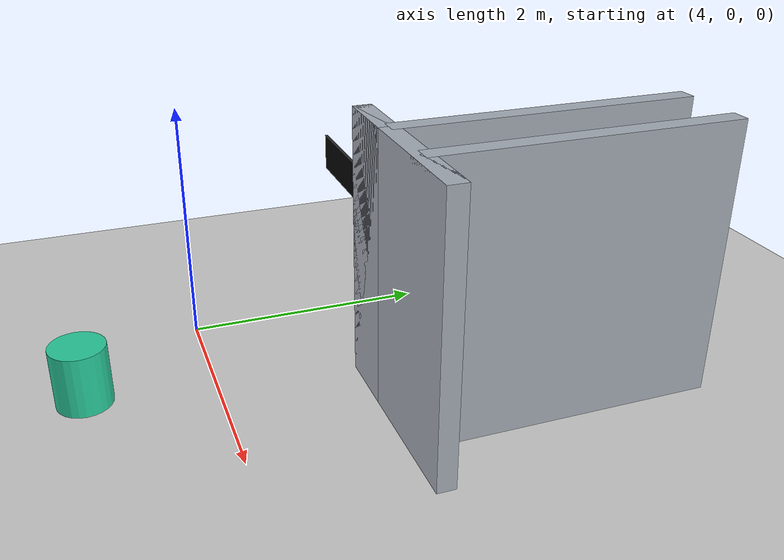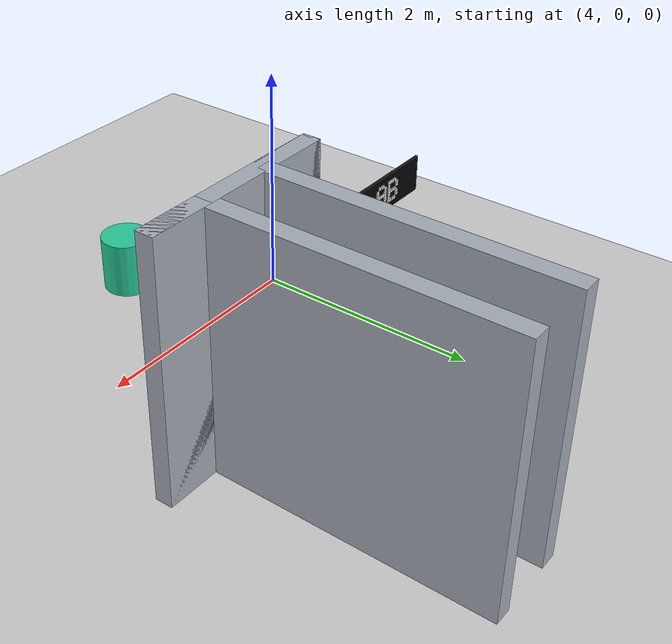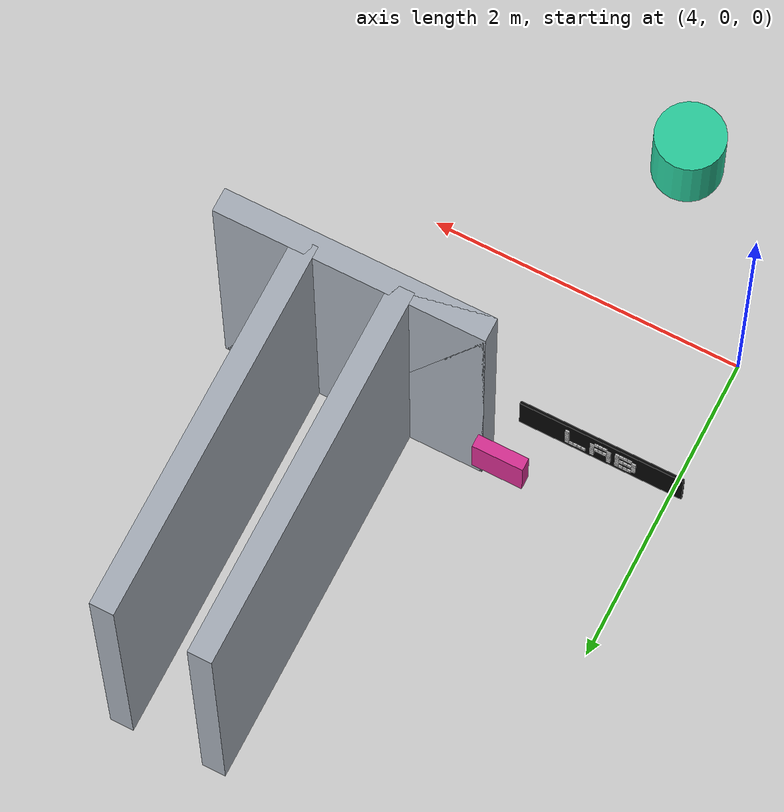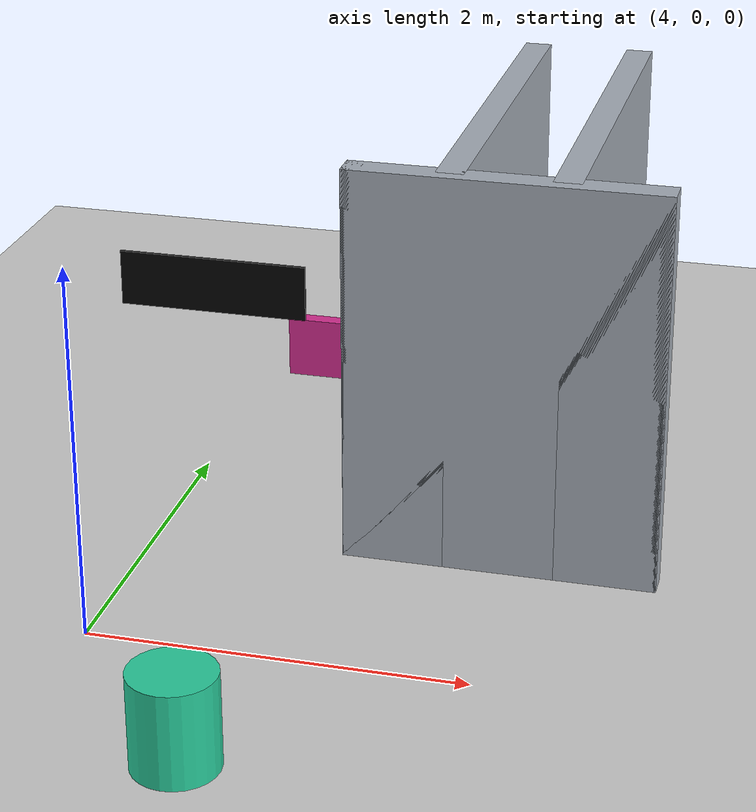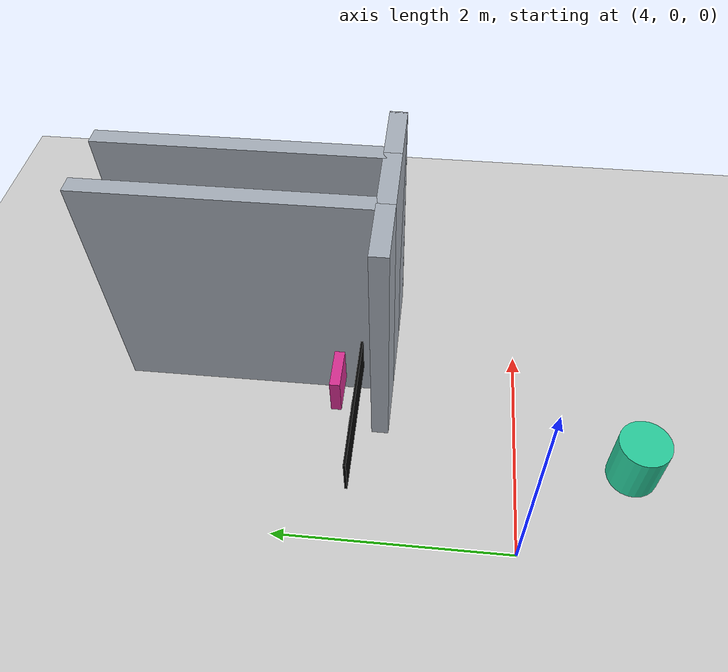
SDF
<sdf version="1.9">
 <world name="default">
  <model name="ground_plane">
   <static>true</static>
   <pose>4.75 0 -0.05 0 0 0</pose>
   <link name="body">
    <collision name="collision"><geometry><box><size>13.5 12 0.1</size></box></geometry></collision>
    <visual name="visual">
     <geometry><box><size>13.5 12 0.1</size></box></geometry>
     <material><ambient>0.8 0.8 0.8 1</ambient><diffuse>0.8 0.8 0.8 1</diffuse></material>
    </visual>
   </link>
  </model>
  <model name="room_1_1_1">
   <static>true</static>
   <pose>5.6 2.4 1.1 0 0 0</pose>
   <link name="body">
    <collision name="collision"><geometry><box><size>0.15 2.4 2.2</size></box></geometry></collision>
    <visual name="visual">
     <geometry><box><size>0.15 2.4 2.2</size></box></geometry>
     <material><ambient>0.65 0.68 0.72 1</ambient><diffuse>0.65 0.68 0.72 1</diffuse></material>
    </visual>
   </link>
  </model>
  <model name="jamb_1_1_1">
   <static>true</static>
   <pose>5.324999999999999 1.2 1.1 0 0 0</pose>
   <link name="body">
    <collision name="collision"><geometry><box><size>0.55 0.15 2.2</size></box></geometry></collision>
    <visual name="visual">
     <geometry><box><size>0.55 0.15 2.2</size></box></geometry>
     <material><ambient>0.65 0.68 0.72 1</ambient><diffuse>0.65 0.68 0.72 1</diffuse></material>
    </visual>
   </link>
  </model>
  <model name="hall_1_2">
   <static>true</static>
   <pose>5.9 1.2 1.1 0 0 0</pose>
   <link name="body">
    <collision name="collision">
     <geometry><box><size>1.7000000000000002 0.15 2.2</size></box></geometry>
    </collision>
    <visual name="visual">
     <geometry><box><size>1.7000000000000002 0.15 2.2</size></box></geometry>
     <material><ambient>0.65 0.68 0.72 1</ambient><diffuse>0.65 0.68 0.72 1</diffuse></material>
    </visual>
   </link>
  </model>
  <model name="room_1_2_-1">
   <static>true</static>
   <pose>6.2 2.4 1.1 0 0 0</pose>
   <link name="body">
    <collision name="collision"><geometry><box><size>0.15 2.4 2.2</size></box></geometry></collision>
    <visual name="visual">
     <geometry><box><size>0.15 2.4 2.2</size></box></geometry>
     <material><ambient>0.65 0.68 0.72 1</ambient><diffuse>0.65 0.68 0.72 1</diffuse></material>
    </visual>
   </link>
  </model>
  <model name="jamb_1_2_-1">
   <static>true</static>
   <pose>6.475 1.2 1.1 0 0 0</pose>
   <link name="body">
    <collision name="collision"><geometry><box><size>0.55 0.15 2.2</size></box></geometry></collision>
    <visual name="visual">
     <geometry><box><size>0.55 0.15 2.2</size></box></geometry>
     <material><ambient>0.65 0.68 0.72 1</ambient><diffuse>0.65 0.68 0.72 1</diffuse></material>
    </visual>
   </link>
  </model>
  <model name="r3geo_base_r010_left_1_entrance_sign">
   <static>true</static>
   <pose>4.83 1.5 1.05 0 0 0</pose>
   <link name="body">
    <visual name="visual">
     <geometry><box><size>0.32 0.08 0.32</size></box></geometry>
     <material><ambient>0.84 0.18 0.57 1</ambient><diffuse>0.84 0.18 0.57 1</diffuse></material>
    </visual>
   </link>
  </model>
  <model name="readable_r3geo_base_r010_left_1_entrance_room">
   <static>true</static>
   <pose>4.3 1.3 1.43 0 0 3.14159265359</pose>
   <link name="lettering">
    <visual name="backboard">
     <geometry><box><size>1.02 0.018 0.3</size></box></geometry>
     <material>
      <ambient>.015 .015 .015 1</ambient>
      <diffuse>.015 .015 .015 1</diffuse>
      <emissive>.015 .015 .015 1</emissive>
     </material>
     <cast_shadows>false</cast_shadows>
    </visual>
    <visual name="letter_0_0_0">
     <pose>-0.208 -0.014 0.078 0 0 0</pose>
     <geometry><box><size>0.024439999999999996 0.008 0.024439999999999996</size></box></geometry>
     <material>
      <ambient>.96 .96 .96 1</ambient>
      <diffuse>.96 .96 .96 1</diffuse>
      <emissive>.96 .96 .96 1</emissive>
     </material>
     <cast_shadows>false</cast_shadows>
    </visual>
    <visual name="letter_0_1_0">
     <pose>-0.208 -0.014 0.052 0 0 0</pose>
     <geometry><box><size>0.024439999999999996 0.008 0.024439999999999996</size></box></geometry>
     <material>
      <ambient>.96 .96 .96 1</ambient>
      <diffuse>.96 .96 .96 1</diffuse>
      <emissive>.96 .96 .96 1</emissive>
     </material>
     <cast_shadows>false</cast_shadows>
    </visual>
    <visual name="letter_0_2_0">
     <pose>-0.208 -0.014 0.026 0 0 0</pose>
     <geometry><box><size>0.024439999999999996 0.008 0.024439999999999996</size></box></geometry>
     <material>
      <ambient>.96 .96 .96 1</ambient>
      <diffuse>.96 .96 .96 1</diffuse>
      <emissive>.96 .96 .96 1</emissive>
     </material>
     <cast_shadows>false</cast_shadows>
    </visual>
    <visual name="letter_0_3_0">
     <pose>-0.208 -0.014 0 0 0 0</pose>
     <geometry><box><size>0.024439999999999996 0.008 0.024439999999999996</size></box></geometry>
     <material>
      <ambient>.96 .96 .96 1</ambient>
      <diffuse>.96 .96 .96 1</diffuse>
      <emissive>.96 .96 .96 1</emissive>
     </material>
     <cast_shadows>false</cast_shadows>
    </visual>
    <visual name="letter_0_4_0">
     <pose>-0.208 -0.014 -0.026 0 0 0</pose>
     <geometry><box><size>0.024439999999999996 0.008 0.024439999999999996</size></box></geometry>
     <material>
      <ambient>.96 .96 .96 1</ambient>
      <diffuse>.96 .96 .96 1</diffuse>
      <emissive>.96 .96 .96 1</emissive>
     </material>
     <cast_shadows>false</cast_shadows>
    </visual>
    <visual name="letter_0_5_0">
     <pose>-0.208 -0.014 -0.052 0 0 0</pose>
     <geometry><box><size>0.024439999999999996 0.008 0.024439999999999996</size></box></geometry>
     <material>
      <ambient>.96 .96 .96 1</ambient>
      <diffuse>.96 .96 .96 1</diffuse>
      <emissive>.96 .96 .96 1</emissive>
     </material>
     <cast_shadows>false</cast_shadows>
    </visual>
    <visual name="letter_0_6_0">
     <pose>-0.208 -0.014 -0.078 0 0 0</pose>
     <geometry><box><size>0.024439999999999996 0.008 0.024439999999999996</size></box></geometry>
     <material>
      <ambient>.96 .96 .96 1</ambient>
      <diffuse>.96 .96 .96 1</diffuse>
      <emissive>.96 .96 .96 1</emissive>
     </material>
     <cast_shadows>false</cast_shadows>
    </visual>
    <visual name="letter_0_6_1">
     <pose>-0.182 -0.014 -0.078 0 0 0</pose>
     <geometry><box><size>0.024439999999999996 0.008 0.024439999999999996</size></box></geometry>
     <material>
      <ambient>.96 .96 .96 1</ambient>
      <diffuse>.96 .96 .96 1</diffuse>
      <emissive>.96 .96 .96 1</emissive>
     </material>
     <cast_shadows>false</cast_shadows>
    </visual>
    <visual name="letter_0_6_2">
     <pose>-0.156 -0.014 -0.078 0 0 0</pose>
     <geometry><box><size>0.024439999999999996 0.008 0.024439999999999996</size></box></geometry>
     <material>
      <ambient>.96 .96 .96 1</ambient>
      <diffuse>.96 .96 .96 1</diffuse>
      <emissive>.96 .96 .96 1</emissive>
     </material>
     <cast_shadows>false</cast_shadows>
    </visual>
    <visual name="letter_0_6_3">
     <pose>-0.13 -0.014 -0.078 0 0 0</pose>
     <geometry><box><size>0.024439999999999996 0.008 0.024439999999999996</size></box></geometry>
     <material>
      <ambient>.96 .96 .96 1</ambient>
      <diffuse>.96 .96 .96 1</diffuse>
      <emissive>.96 .96 .96 1</emissive>
     </material>
     <cast_shadows>false</cast_shadows>
    </visual>
    <visual name="letter_0_6_4">
     <pose>-0.104 -0.014 -0.078 0 0 0</pose>
     <geometry><box><size>0.024439999999999996 0.008 0.024439999999999996</size></box></geometry>
     <material>
      <ambient>.96 .96 .96 1</ambient>
      <diffuse>.96 .96 .96 1</diffuse>
      <emissive>.96 .96 .96 1</emissive>
     </material>
     <cast_shadows>false</cast_shadows>
    </visual>
    <visual name="letter_1_0_1">
     <pose>-0.026 -0.014 0.078 0 0 0</pose>
     <geometry><box><size>0.024439999999999996 0.008 0.024439999999999996</size></box></geometry>
     <material>
      <ambient>.96 .96 .96 1</ambient>
      <diffuse>.96 .96 .96 1</diffuse>
      <emissive>.96 .96 .96 1</emissive>
     </material>
     <cast_shadows>false</cast_shadows>
    </visual>
    <visual name="letter_1_0_2">
     <pose>0 -0.014 0.078 0 0 0</pose>
     <geometry><box><size>0.024439999999999996 0.008 0.024439999999999996</size></box></geometry>
     <material>
      <ambient>.96 .96 .96 1</ambient>
      <diffuse>.96 .96 .96 1</diffuse>
      <emissive>.96 .96 .96 1</emissive>
     </material>
     <cast_shadows>false</cast_shadows>
    </visual>
    <visual name="letter_1_0_3">
     <pose>0.026 -0.014 0.078 0 0 0</pose>
     <geometry><box><size>0.024439999999999996 0.008 0.024439999999999996</size></box></geometry>
     <material>
      <ambient>.96 .96 .96 1</ambient>
      <diffuse>.96 .96 .96 1</diffuse>
      <emissive>.96 .96 .96 1</emissive>
     </material>
     <cast_shadows>false</cast_shadows>
    </visual>
    <visual name="letter_1_1_0">
     <pose>-0.052 -0.014 0.052 0 0 0</pose>
     <geometry><box><size>0.024439999999999996 0.008 0.024439999999999996</size></box></geometry>
     <material>
      <ambient>.96 .96 .96 1</ambient>
      <diffuse>.96 .96 .96 1</diffuse>
      <emissive>.96 .96 .96 1</emissive>
     </material>
     <cast_shadows>false</cast_shadows>
    </visual>
    <visual name="letter_1_1_4">
     <pose>0.052 -0.014 0.052 0 0 0</pose>
     <geometry><box><size>0.024439999999999996 0.008 0.024439999999999996</size></box></geometry>
     <material>
      <ambient>.96 .96 .96 1</ambient>
      <diffuse>.96 .96 .96 1</diffuse>
      <emissive>.96 .96 .96 1</emissive>
     </material>
     <cast_shadows>false</cast_shadows>
    </visual>
    <visual name="letter_1_2_0">
     <pose>-0.052 -0.014 0.026 0 0 0</pose>
     <geometry><box><size>0.024439999999999996 0.008 0.024439999999999996</size></box></geometry>
     <material>
      <ambient>.96 .96 .96 1</ambient>
      <diffuse>.96 .96 .96 1</diffuse>
      <emissive>.96 .96 .96 1</emissive>
     </material>
     <cast_shadows>false</cast_shadows>
    </visual>
    <visual name="letter_1_2_4">
     <pose>0.052 -0.014 0.026 0 0 0</pose>
     <geometry><box><size>0.024439999999999996 0.008 0.024439999999999996</size></box></geometry>
     <material>
      <ambient>.96 .96 .96 1</ambient>
      <diffuse>.96 .96 .96 1</diffuse>
      <emissive>.96 .96 .96 1</emissive>
     </material>
     <cast_shadows>false</cast_shadows>
    </visual>
    <visual name="letter_1_3_0">
     <pose>-0.052 -0.014 0 0 0 0</pose>
     <geometry><box><size>0.024439999999999996 0.008 0.024439999999999996</size></box></geometry>
     <material>
      <ambient>.96 .96 .96 1</ambient>
      <diffuse>.96 .96 .96 1</diffuse>
      <emissive>.96 .96 .96 1</emissive>
     </material>
     <cast_shadows>false</cast_shadows>
    </visual>
    <visual name="letter_1_3_1">
     <pose>-0.026 -0.014 0 0 0 0</pose>
     <geometry><box><size>0.024439999999999996 0.008 0.024439999999999996</size></box></geometry>
     <material>
      <ambient>.96 .96 .96 1</ambient>
      <diffuse>.96 .96 .96 1</diffuse>
      <emissive>.96 .96 .96 1</emissive>
     </material>
     <cast_shadows>false</cast_shadows>
    </visual>
    <visual name="letter_1_3_2">
     <pose>0 -0.014 0 0 0 0</pose>
     <geometry><box><size>0.024439999999999996 0.008 0.024439999999999996</size></box></geometry>
     <material>
      <ambient>.96 .96 .96 1</ambient>
      <diffuse>.96 .96 .96 1</diffuse>
      <emissive>.96 .96 .96 1</emissive>
     </material>
     <cast_shadows>false</cast_shadows>
    </visual>
    <visual name="letter_1_3_3">
     <pose>0.026 -0.014 0 0 0 0</pose>
     <geometry><box><size>0.024439999999999996 0.008 0.024439999999999996</size></box></geometry>
     <material>
      <ambient>.96 .96 .96 1</ambient>
      <diffuse>.96 .96 .96 1</diffuse>
      <emissive>.96 .96 .96 1</emissive>
     </material>
     <cast_shadows>false</cast_shadows>
    </visual>
    <visual name="letter_1_3_4">
     <pose>0.052 -0.014 0 0 0 0</pose>
     <geometry><box><size>0.024439999999999996 0.008 0.024439999999999996</size></box></geometry>
     <material>
      <ambient>.96 .96 .96 1</ambient>
      <diffuse>.96 .96 .96 1</diffuse>
      <emissive>.96 .96 .96 1</emissive>
     </material>
     <cast_shadows>false</cast_shadows>
    </visual>
    <visual name="letter_1_4_0">
     <pose>-0.052 -0.014 -0.026 0 0 0</pose>
     <geometry><box><size>0.024439999999999996 0.008 0.024439999999999996</size></box></geometry>
     <material>
      <ambient>.96 .96 .96 1</ambient>
      <diffuse>.96 .96 .96 1</diffuse>
      <emissive>.96 .96 .96 1</emissive>
     </material>
     <cast_shadows>false</cast_shadows>
    </visual>
    <visual name="letter_1_4_4">
     <pose>0.052 -0.014 -0.026 0 0 0</pose>
     <geometry><box><size>0.024439999999999996 0.008 0.024439999999999996</size></box></geometry>
     <material>
      <ambient>.96 .96 .96 1</ambient>
      <diffuse>.96 .96 .96 1</diffuse>
      <emissive>.96 .96 .96 1</emissive>
     </material>
     <cast_shadows>false</cast_shadows>
    </visual>
    <visual name="letter_1_5_0">
     <pose>-0.052 -0.014 -0.052 0 0 0</pose>
     <geometry><box><size>0.024439999999999996 0.008 0.024439999999999996</size></box></geometry>
     <material>
      <ambient>.96 .96 .96 1</ambient>
      <diffuse>.96 .96 .96 1</diffuse>
      <emissive>.96 .96 .96 1</emissive>
     </material>
     <cast_shadows>false</cast_shadows>
    </visual>
    <visual name="letter_1_5_4">
     <pose>0.052 -0.014 -0.052 0 0 0</pose>
     <geometry><box><size>0.024439999999999996 0.008 0.024439999999999996</size></box></geometry>
     <material>
      <ambient>.96 .96 .96 1</ambient>
      <diffuse>.96 .96 .96 1</diffuse>
      <emissive>.96 .96 .96 1</emissive>
     </material>
     <cast_shadows>false</cast_shadows>
    </visual>
    <visual name="letter_1_6_0">
     <pose>-0.052 -0.014 -0.078 0 0 0</pose>
     <geometry><box><size>0.024439999999999996 0.008 0.024439999999999996</size></box></geometry>
     <material>
      <ambient>.96 .96 .96 1</ambient>
      <diffuse>.96 .96 .96 1</diffuse>
      <emissive>.96 .96 .96 1</emissive>
     </material>
     <cast_shadows>false</cast_shadows>
    </visual>
    <visual name="letter_1_6_4">
     <pose>0.052 -0.014 -0.078 0 0 0</pose>
     <geometry><box><size>0.024439999999999996 0.008 0.024439999999999996</size></box></geometry>
     <material>
      <ambient>.96 .96 .96 1</ambient>
      <diffuse>.96 .96 .96 1</diffuse>
      <emissive>.96 .96 .96 1</emissive>
     </material>
     <cast_shadows>false</cast_shadows>
    </visual>
    <visual name="letter_2_0_0">
     <pose>0.104 -0.014 0.078 0 0 0</pose>
     <geometry><box><size>0.024439999999999996 0.008 0.024439999999999996</size></box></geometry>
     <material>
      <ambient>.96 .96 .96 1</ambient>
      <diffuse>.96 .96 .96 1</diffuse>
      <emissive>.96 .96 .96 1</emissive>
     </material>
     <cast_shadows>false</cast_shadows>
    </visual>
    <visual name="letter_2_0_1">
     <pose>0.13 -0.014 0.078 0 0 0</pose>
     <geometry><box><size>0.024439999999999996 0.008 0.024439999999999996</size></box></geometry>
     <material>
      <ambient>.96 .96 .96 1</ambient>
      <diffuse>.96 .96 .96 1</diffuse>
      <emissive>.96 .96 .96 1</emissive>
     </material>
     <cast_shadows>false</cast_shadows>
    </visual>
    <visual name="letter_2_0_2">
     <pose>0.156 -0.014 0.078 0 0 0</pose>
     <geometry><box><size>0.024439999999999996 0.008 0.024439999999999996</size></box></geometry>
     <material>
      <ambient>.96 .96 .96 1</ambient>
      <diffuse>.96 .96 .96 1</diffuse>
      <emissive>.96 .96 .96 1</emissive>
     </material>
     <cast_shadows>false</cast_shadows>
    </visual>
    <visual name="letter_2_0_3">
     <pose>0.182 -0.014 0.078 0 0 0</pose>
     <geometry><box><size>0.024439999999999996 0.008 0.024439999999999996</size></box></geometry>
     <material>
      <ambient>.96 .96 .96 1</ambient>
      <diffuse>.96 .96 .96 1</diffuse>
      <emissive>.96 .96 .96 1</emissive>
     </material>
     <cast_shadows>false</cast_shadows>
    </visual>
    <visual name="letter_2_1_0">
     <pose>0.104 -0.014 0.052 0 0 0</pose>
     <geometry><box><size>0.024439999999999996 0.008 0.024439999999999996</size></box></geometry>
     <material>
      <ambient>.96 .96 .96 1</ambient>
      <diffuse>.96 .96 .96 1</diffuse>
      <emissive>.96 .96 .96 1</emissive>
     </material>
     <cast_shadows>false</cast_shadows>
    </visual>
    <visual name="letter_2_1_4">
     <pose>0.208 -0.014 0.052 0 0 0</pose>
     <geometry><box><size>0.024439999999999996 0.008 0.024439999999999996</size></box></geometry>
     <material>
      <ambient>.96 .96 .96 1</ambient>
      <diffuse>.96 .96 .96 1</diffuse>
      <emissive>.96 .96 .96 1</emissive>
     </material>
     <cast_shadows>false</cast_shadows>
    </visual>
    <visual name="letter_2_2_0">
     <pose>0.104 -0.014 0.026 0 0 0</pose>
     <geometry><box><size>0.024439999999999996 0.008 0.024439999999999996</size></box></geometry>
     <material>
      <ambient>.96 .96 .96 1</ambient>
      <diffuse>.96 .96 .96 1</diffuse>
      <emissive>.96 .96 .96 1</emissive>
     </material>
     <cast_shadows>false</cast_shadows>
    </visual>
    <visual name="letter_2_2_4">
     <pose>0.208 -0.014 0.026 0 0 0</pose>
     <geometry><box><size>0.024439999999999996 0.008 0.024439999999999996</size></box></geometry>
     <material>
      <ambient>.96 .96 .96 1</ambient>
      <diffuse>.96 .96 .96 1</diffuse>
      <emissive>.96 .96 .96 1</emissive>
     </material>
     <cast_shadows>false</cast_shadows>
    </visual>
    <visual name="letter_2_3_0">
     <pose>0.104 -0.014 0 0 0 0</pose>
     <geometry><box><size>0.024439999999999996 0.008 0.024439999999999996</size></box></geometry>
     <material>
      <ambient>.96 .96 .96 1</ambient>
      <diffuse>.96 .96 .96 1</diffuse>
      <emissive>.96 .96 .96 1</emissive>
     </material>
     <cast_shadows>false</cast_shadows>
    </visual>
    <visual name="letter_2_3_1">
     <pose>0.13 -0.014 0 0 0 0</pose>
     <geometry><box><size>0.024439999999999996 0.008 0.024439999999999996</size></box></geometry>
     <material>
      <ambient>.96 .96 .96 1</ambient>
      <diffuse>.96 .96 .96 1</diffuse>
      <emissive>.96 .96 .96 1</emissive>
     </material>
     <cast_shadows>false</cast_shadows>
    </visual>
    <visual name="letter_2_3_2">
     <pose>0.156 -0.014 0 0 0 0</pose>
     <geometry><box><size>0.024439999999999996 0.008 0.024439999999999996</size></box></geometry>
     <material>
      <ambient>.96 .96 .96 1</ambient>
      <diffuse>.96 .96 .96 1</diffuse>
      <emissive>.96 .96 .96 1</emissive>
     </material>
     <cast_shadows>false</cast_shadows>
    </visual>
    <visual name="letter_2_3_3">
     <pose>0.182 -0.014 0 0 0 0</pose>
     <geometry><box><size>0.024439999999999996 0.008 0.024439999999999996</size></box></geometry>
     <material>
      <ambient>.96 .96 .96 1</ambient>
      <diffuse>.96 .96 .96 1</diffuse>
      <emissive>.96 .96 .96 1</emissive>
     </material>
     <cast_shadows>false</cast_shadows>
    </visual>
    <visual name="letter_2_4_0">
     <pose>0.104 -0.014 -0.026 0 0 0</pose>
     <geometry><box><size>0.024439999999999996 0.008 0.024439999999999996</size></box></geometry>
     <material>
      <ambient>.96 .96 .96 1</ambient>
      <diffuse>.96 .96 .96 1</diffuse>
      <emissive>.96 .96 .96 1</emissive>
     </material>
     <cast_shadows>false</cast_shadows>
    </visual>
    <visual name="letter_2_4_4">
     <pose>0.208 -0.014 -0.026 0 0 0</pose>
     <geometry><box><size>0.024439999999999996 0.008 0.024439999999999996</size></box></geometry>
     <material>
      <ambient>.96 .96 .96 1</ambient>
      <diffuse>.96 .96 .96 1</diffuse>
      <emissive>.96 .96 .96 1</emissive>
     </material>
     <cast_shadows>false</cast_shadows>
    </visual>
    <visual name="letter_2_5_0">
     <pose>0.104 -0.014 -0.052 0 0 0</pose>
     <geometry><box><size>0.024439999999999996 0.008 0.024439999999999996</size></box></geometry>
     <material>
      <ambient>.96 .96 .96 1</ambient>
      <diffuse>.96 .96 .96 1</diffuse>
      <emissive>.96 .96 .96 1</emissive>
     </material>
     <cast_shadows>false</cast_shadows>
    </visual>
    <visual name="letter_2_5_4">
     <pose>0.208 -0.014 -0.052 0 0 0</pose>
     <geometry><box><size>0.024439999999999996 0.008 0.024439999999999996</size></box></geometry>
     <material>
      <ambient>.96 .96 .96 1</ambient>
      <diffuse>.96 .96 .96 1</diffuse>
      <emissive>.96 .96 .96 1</emissive>
     </material>
     <cast_shadows>false</cast_shadows>
    </visual>
    <visual name="letter_2_6_0">
     <pose>0.104 -0.014 -0.078 0 0 0</pose>
     <geometry><box><size>0.024439999999999996 0.008 0.024439999999999996</size></box></geometry>
     <material>
      <ambient>.96 .96 .96 1</ambient>
      <diffuse>.96 .96 .96 1</diffuse>
      <emissive>.96 .96 .96 1</emissive>
     </material>
     <cast_shadows>false</cast_shadows>
    </visual>
    <visual name="letter_2_6_1">
     <pose>0.13 -0.014 -0.078 0 0 0</pose>
     <geometry><box><size>0.024439999999999996 0.008 0.024439999999999996</size></box></geometry>
     <material>
      <ambient>.96 .96 .96 1</ambient>
      <diffuse>.96 .96 .96 1</diffuse>
      <emissive>.96 .96 .96 1</emissive>
     </material>
     <cast_shadows>false</cast_shadows>
    </visual>
    <visual name="letter_2_6_2">
     <pose>0.156 -0.014 -0.078 0 0 0</pose>
     <geometry><box><size>0.024439999999999996 0.008 0.024439999999999996</size></box></geometry>
     <material>
      <ambient>.96 .96 .96 1</ambient>
      <diffuse>.96 .96 .96 1</diffuse>
      <emissive>.96 .96 .96 1</emissive>
     </material>
     <cast_shadows>false</cast_shadows>
    </visual>
    <visual name="letter_2_6_3">
     <pose>0.182 -0.014 -0.078 0 0 0</pose>
     <geometry><box><size>0.024439999999999996 0.008 0.024439999999999996</size></box></geometry>
     <material>
      <ambient>.96 .96 .96 1</ambient>
      <diffuse>.96 .96 .96 1</diffuse>
      <emissive>.96 .96 .96 1</emissive>
     </material>
     <cast_shadows>false</cast_shadows>
    </visual>
   </link>
  </model>
  <model name="stress_shape_r3geo_base_r010_right_1_entrance">
   <static>true</static>
   <pose>4.83 -1.0 0.25 0 0 0</pose>
   <link name="visual_only_shape">
    <visual name="unmistakable_cylinder">
     <geometry><cylinder><radius>0.22</radius><length>.5</length></cylinder></geometry>
     <material><ambient>0.16 0.8 0.61 1</ambient><diffuse>0.16 0.8 0.61 1</diffuse></material>
    </visual>
   </link>
  </model>
 </world>
</sdf>
